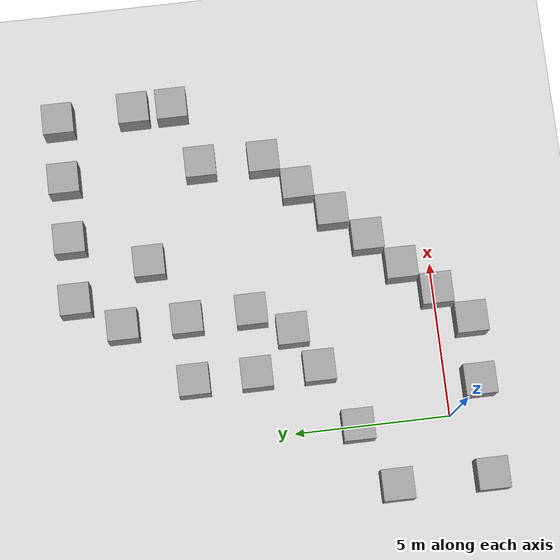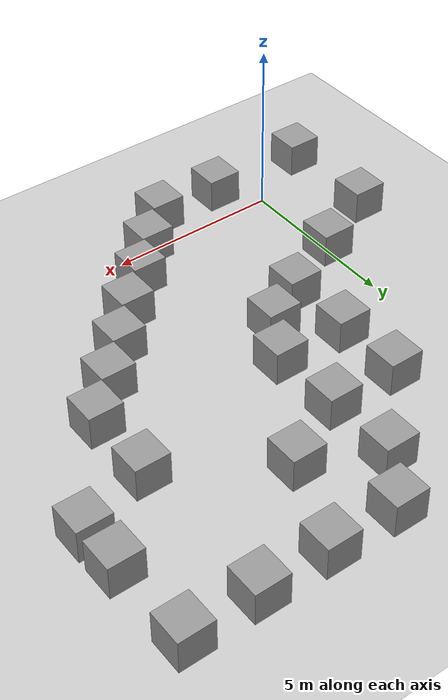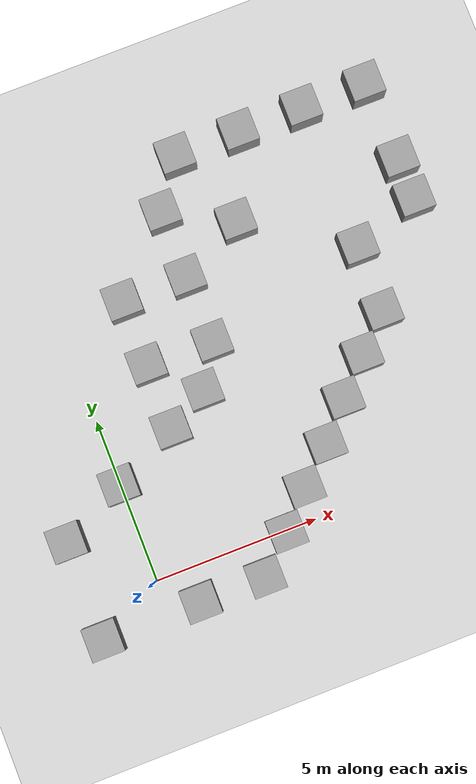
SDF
<sdf version="1.6">
 <world name="default">
  <scene><ambient>0.4 0.4 0.4 1</ambient><background>0.7 0.7 0.7 1</background><shadows>0</shadows></scene>
  <light name="sun" type="directional">
   <cast_shadows>0</cast_shadows>
   <pose>0 0 10 0 -0 0</pose>
   <diffuse>0.8 0.8 0.8 1</diffuse>
   <specular>0.2 0.2 0.2 1</specular>
   <attenuation>
    <range>1000</range>
    <constant>0.9</constant>
    <linear>0.01</linear>
    <quadratic>0.001</quadratic>
   </attenuation>
   <direction>-0.5 0.1 -0.9</direction>
  </light>
  <model name="ground_plane">
   <static>1</static>
   <link name="link">
    <collision name="collision">
     <geometry><plane><normal>0 0 1</normal><size>100 100</size></plane></geometry>
     <surface><friction><ode><mu>100</mu><mu2>50</mu2></ode></friction></surface>
    </collision>
    <visual name="visual">
     <cast_shadows>0</cast_shadows>
     <geometry><plane><normal>0 0 1</normal><size>100 100</size></plane></geometry>
     <material>
      <script><uri>file://media/materials/scripts/gazebo.material</uri><name>Gazebo/Grey</name></script>
     </material>
    </visual>
   </link>
  </model>
  <physics name="default_physics" default="0" type="ode">
   <real_time_update_rate>1000</real_time_update_rate>
   <max_step_size>0.001</max_step_size>
   <real_time_factor>1</real_time_factor>
   <ode>
    <solver>
     <type>quick</type>
     <iters>150</iters>
     <precon_iters>0</precon_iters>
     <sor>1.4</sor>
     <use_dynamic_moi_rescaling>1</use_dynamic_moi_rescaling>
    </solver>
    <constraints>
     <cfm>1e-05</cfm>
     <erp>0.2</erp>
     <contact_max_correcting_vel>2000</contact_max_correcting_vel>
     <contact_surface_layer>0.01</contact_surface_layer>
    </constraints>
   </ode>
  </physics>
  <gravity>0 0 -9.8</gravity>
  <magnetic_field>6e-06 2.3e-05 -4.2e-05</magnetic_field>
  <atmosphere type="adiabatic"/>
  <spherical_coordinates>
   <surface_model>EARTH_WGS84</surface_model>
   <latitude_deg>0</latitude_deg>
   <longitude_deg>0</longitude_deg>
   <elevation>0</elevation>
   <heading_deg>0</heading_deg>
  </spherical_coordinates>
  <model name="unit_box">
   <pose>-2 -1 0.5 0 -0 0</pose>
   <link name="link">
    <inertial>
     <mass>1</mass>
     <inertia>
      <ixx>0.166667</ixx>
      <ixy>0</ixy>
      <ixz>0</ixz>
      <iyy>0.166667</iyy>
      <iyz>0</iyz>
      <izz>0.166667</izz>
     </inertia>
    </inertial>
    <collision name="collision"><geometry><box><size>1 1 1</size></box></geometry></collision>
    <visual name="visual">
     <geometry><box><size>1 1 1</size></box></geometry>
     <material>
      <script><name>Gazebo/Grey</name><uri>file://media/materials/scripts/gazebo.material</uri></script>
     </material>
    </visual>
   </link>
  </model>
  <model name="unit_box_0">
   <pose>1 -1 0.5 0 -0 0</pose>
   <link name="link">
    <inertial>
     <mass>1</mass>
     <inertia>
      <ixx>0.166667</ixx>
      <ixy>0</ixy>
      <ixz>0</ixz>
      <iyy>0.166667</iyy>
      <iyz>0</iyz>
      <izz>0.166667</izz>
     </inertia>
    </inertial>
    <collision name="collision"><geometry><box><size>1 1 1</size></box></geometry></collision>
    <visual name="visual">
     <geometry><box><size>1 1 1</size></box></geometry>
     <material>
      <script><name>Gazebo/Grey</name><uri>file://media/materials/scripts/gazebo.material</uri></script>
     </material>
    </visual>
   </link>
  </model>
  <model name="unit_box_1">
   <pose>3 -1 0.5 0 -0 0</pose>
   <link name="link">
    <inertial>
     <mass>1</mass>
     <inertia>
      <ixx>0.166667</ixx>
      <ixy>0</ixy>
      <ixz>0</ixz>
      <iyy>0.166667</iyy>
      <iyz>0</iyz>
      <izz>0.166667</izz>
     </inertia>
    </inertial>
    <collision name="collision"><geometry><box><size>1 1 1</size></box></geometry></collision>
    <visual name="visual">
     <geometry><box><size>1 1 1</size></box></geometry>
     <material>
      <script><name>Gazebo/Grey</name><uri>file://media/materials/scripts/gazebo.material</uri></script>
     </material>
    </visual>
   </link>
  </model>
  <model name="unit_box_2">
   <pose>5 1 0.5 0 -0 0</pose>
   <link name="link">
    <inertial>
     <mass>1</mass>
     <inertia>
      <ixx>0.166667</ixx>
      <ixy>0</ixy>
      <ixz>0</ixz>
      <iyy>0.166667</iyy>
      <iyz>0</iyz>
      <izz>0.166667</izz>
     </inertia>
    </inertial>
    <collision name="collision"><geometry><box><size>1 1 1</size></box></geometry></collision>
    <visual name="visual">
     <geometry><box><size>1 1 1</size></box></geometry>
     <material>
      <script><name>Gazebo/Grey</name><uri>file://media/materials/scripts/gazebo.material</uri></script>
     </material>
    </visual>
   </link>
  </model>
  <model name="unit_box_3">
   <pose>7 3 0.5 0 -0 0</pose>
   <link name="link">
    <inertial>
     <mass>1</mass>
     <inertia>
      <ixx>0.166667</ixx>
      <ixy>0</ixy>
      <ixz>0</ixz>
      <iyy>0.166667</iyy>
      <iyz>0</iyz>
      <izz>0.166667</izz>
     </inertia>
    </inertial>
    <collision name="collision"><geometry><box><size>1 1 1</size></box></geometry></collision>
    <visual name="visual">
     <geometry><box><size>1 1 1</size></box></geometry>
     <material>
      <script><name>Gazebo/Grey</name><uri>file://media/materials/scripts/gazebo.material</uri></script>
     </material>
    </visual>
   </link>
  </model>
  <model name="unit_box_4">
   <pose>9 5 0.5 0 -0 0</pose>
   <link name="link">
    <inertial>
     <mass>1</mass>
     <inertia>
      <ixx>0.166667</ixx>
      <ixy>0</ixy>
      <ixz>0</ixz>
      <iyy>0.166667</iyy>
      <iyz>0</iyz>
      <izz>0.166667</izz>
     </inertia>
    </inertial>
    <collision name="collision"><geometry><box><size>1 1 1</size></box></geometry></collision>
    <visual name="visual">
     <geometry><box><size>1 1 1</size></box></geometry>
     <material>
      <script><name>Gazebo/Grey</name><uri>file://media/materials/scripts/gazebo.material</uri></script>
     </material>
    </visual>
   </link>
  </model>
  <model name="unit_box_5">
   <pose>-2 2 0.5 0 -0 0</pose>
   <link name="link">
    <inertial>
     <mass>1</mass>
     <inertia>
      <ixx>0.166667</ixx>
      <ixy>0</ixy>
      <ixz>0</ixz>
      <iyy>0.166667</iyy>
      <iyz>0</iyz>
      <izz>0.166667</izz>
     </inertia>
    </inertial>
    <collision name="collision"><geometry><box><size>1 1 1</size></box></geometry></collision>
    <visual name="visual">
     <geometry><box><size>1 1 1</size></box></geometry>
     <material>
      <script><name>Gazebo/Grey</name><uri>file://media/materials/scripts/gazebo.material</uri></script>
     </material>
    </visual>
   </link>
  </model>
  <model name="unit_box_6">
   <pose>0 3 0.5 0 -0 0</pose>
   <link name="link">
    <inertial>
     <mass>1</mass>
     <inertia>
      <ixx>0.166667</ixx>
      <ixy>0</ixy>
      <ixz>0</ixz>
      <iyy>0.166667</iyy>
      <iyz>0</iyz>
      <izz>0.166667</izz>
     </inertia>
    </inertial>
    <collision name="collision"><geometry><box><size>1 1 1</size></box></geometry></collision>
    <visual name="visual">
     <geometry><box><size>1 1 1</size></box></geometry>
     <material>
      <script><name>Gazebo/Grey</name><uri>file://media/materials/scripts/gazebo.material</uri></script>
     </material>
    </visual>
   </link>
  </model>
  <model name="unit_box_7">
   <pose>2 4 0.5 0 -0 0</pose>
   <link name="link">
    <inertial>
     <mass>1</mass>
     <inertia>
      <ixx>0.166667</ixx>
      <ixy>0</ixy>
      <ixz>0</ixz>
      <iyy>0.166667</iyy>
      <iyz>0</iyz>
      <izz>0.166667</izz>
     </inertia>
    </inertial>
    <collision name="collision"><geometry><box><size>1 1 1</size></box></geometry></collision>
    <visual name="visual">
     <geometry><box><size>1 1 1</size></box></geometry>
     <material>
      <script><name>Gazebo/Grey</name><uri>file://media/materials/scripts/gazebo.material</uri></script>
     </material>
    </visual>
   </link>
  </model>
  <model name="unit_box_8">
   <pose>2 6 0.5 0 -0 0</pose>
   <link name="link">
    <inertial>
     <mass>1</mass>
     <inertia>
      <ixx>0.166667</ixx>
      <ixy>0</ixy>
      <ixz>0</ixz>
      <iyy>0.166667</iyy>
      <iyz>0</iyz>
      <izz>0.166667</izz>
     </inertia>
    </inertial>
    <collision name="collision"><geometry><box><size>1 1 1</size></box></geometry></collision>
    <visual name="visual">
     <geometry><box><size>1 1 1</size></box></geometry>
     <material>
      <script><name>Gazebo/Grey</name><uri>file://media/materials/scripts/gazebo.material</uri></script>
     </material>
    </visual>
   </link>
  </model>
  <model name="unit_box_9">
   <pose>2 8 0.5 0 -0 0</pose>
   <link name="link">
    <inertial>
     <mass>1</mass>
     <inertia>
      <ixx>0.166667</ixx>
      <ixy>0</ixy>
      <ixz>0</ixz>
      <iyy>0.166667</iyy>
      <iyz>0</iyz>
      <izz>0.166667</izz>
     </inertia>
    </inertial>
    <collision name="collision"><geometry><box><size>1 1 1</size></box></geometry></collision>
    <visual name="visual">
     <geometry><box><size>1 1 1</size></box></geometry>
     <material>
      <script><name>Gazebo/Grey</name><uri>file://media/materials/scripts/gazebo.material</uri></script>
     </material>
    </visual>
   </link>
  </model>
  <model name="unit_box_10">
   <pose>5 11.5 0.5 0 -0 0</pose>
   <link name="link">
    <inertial>
     <mass>1</mass>
     <inertia>
      <ixx>0.166667</ixx>
      <ixy>0</ixy>
      <ixz>0</ixz>
      <iyy>0.166667</iyy>
      <iyz>0</iyz>
      <izz>0.166667</izz>
     </inertia>
    </inertial>
    <collision name="collision"><geometry><box><size>1 1 1</size></box></geometry></collision>
    <visual name="visual">
     <geometry><box><size>1 1 1</size></box></geometry>
     <material>
      <script><name>Gazebo/Grey</name><uri>file://media/materials/scripts/gazebo.material</uri></script>
     </material>
    </visual>
   </link>
  </model>
  <model name="unit_box_11">
   <pose>7 11.5 0.5 0 -0 0</pose>
   <link name="link">
    <inertial>
     <mass>1</mass>
     <inertia>
      <ixx>0.166667</ixx>
      <ixy>0</ixy>
      <ixz>0</ixz>
      <iyy>0.166667</iyy>
      <iyz>0</iyz>
      <izz>0.166667</izz>
     </inertia>
    </inertial>
    <collision name="collision"><geometry><box><size>1 1 1</size></box></geometry></collision>
    <visual name="visual">
     <geometry><box><size>1 1 1</size></box></geometry>
     <material>
      <script><name>Gazebo/Grey</name><uri>file://media/materials/scripts/gazebo.material</uri></script>
     </material>
    </visual>
   </link>
  </model>
  <model name="unit_box_12">
   <pose>9 11.5 0.5 0 -0 0</pose>
   <link name="link">
    <inertial>
     <mass>1</mass>
     <inertia>
      <ixx>0.166667</ixx>
      <ixy>0</ixy>
      <ixz>0</ixz>
      <iyy>0.166667</iyy>
      <iyz>0</iyz>
      <izz>0.166667</izz>
     </inertia>
    </inertial>
    <collision name="collision"><geometry><box><size>1 1 1</size></box></geometry></collision>
    <visual name="visual">
     <geometry><box><size>1 1 1</size></box></geometry>
     <material>
      <script><name>Gazebo/Grey</name><uri>file://media/materials/scripts/gazebo.material</uri></script>
     </material>
    </visual>
   </link>
  </model>
  <model name="unit_box_13">
   <pose>11 11.5 0.5 0 -0 0</pose>
   <link name="link">
    <inertial>
     <mass>1</mass>
     <inertia>
      <ixx>0.166667</ixx>
      <ixy>0</ixy>
      <ixz>0</ixz>
      <iyy>0.166667</iyy>
      <iyz>0</iyz>
      <izz>0.166667</izz>
     </inertia>
    </inertial>
    <collision name="collision"><geometry><box><size>1 1 1</size></box></geometry></collision>
    <visual name="visual">
     <geometry><box><size>1 1 1</size></box></geometry>
     <material>
      <script><name>Gazebo/Grey</name><uri>file://media/materials/scripts/gazebo.material</uri></script>
     </material>
    </visual>
   </link>
  </model>
  <model name="unit_box_14">
   <pose>4.03319 5.94636 0.5 0 -0 0</pose>
   <link name="link">
    <inertial>
     <mass>1</mass>
     <inertia>
      <ixx>0.166667</ixx>
      <ixy>0</ixy>
      <ixz>0</ixz>
      <iyy>0.166667</iyy>
      <iyz>0</iyz>
      <izz>0.166667</izz>
     </inertia>
    </inertial>
    <collision name="collision"><geometry><box><size>1 1 1</size></box></geometry></collision>
    <visual name="visual">
     <geometry><box><size>1 1 1</size></box></geometry>
     <material>
      <script><name>Gazebo/Grey</name><uri>file://media/materials/scripts/gazebo.material</uri></script>
     </material>
    </visual>
   </link>
  </model>
  <model name="unit_box_15">
   <pose>3.99665 8.0147 0.5 0 -0 0</pose>
   <link name="link">
    <inertial>
     <mass>1</mass>
     <inertia>
      <ixx>0.166667</ixx>
      <ixy>0</ixy>
      <ixz>0</ixz>
      <iyy>0.166667</iyy>
      <iyz>0</iyz>
      <izz>0.166667</izz>
     </inertia>
    </inertial>
    <collision name="collision"><geometry><box><size>1 1 1</size></box></geometry></collision>
    <visual name="visual">
     <geometry><box><size>1 1 1</size></box></geometry>
     <material>
      <script><name>Gazebo/Grey</name><uri>file://media/materials/scripts/gazebo.material</uri></script>
     </material>
    </visual>
   </link>
  </model>
  <model name="unit_box_16">
   <pose>4.00744 10.0731 0.5 0 -0 0</pose>
   <link name="link">
    <inertial>
     <mass>1</mass>
     <inertia>
      <ixx>0.166667</ixx>
      <ixy>0</ixy>
      <ixz>0</ixz>
      <iyy>0.166667</iyy>
      <iyz>0</iyz>
      <izz>0.166667</izz>
     </inertia>
    </inertial>
    <collision name="collision"><geometry><box><size>1 1 1</size></box></geometry></collision>
    <visual name="visual">
     <geometry><box><size>1 1 1</size></box></geometry>
     <material>
      <script><name>Gazebo/Grey</name><uri>file://media/materials/scripts/gazebo.material</uri></script>
     </material>
    </visual>
   </link>
  </model>
  <model name="unit_box_17">
   <pose>5.97383 9.02776 0.5 0 -0 0</pose>
   <link name="link">
    <inertial>
     <mass>1</mass>
     <inertia>
      <ixx>0.166667</ixx>
      <ixy>0</ixy>
      <ixz>0</ixz>
      <iyy>0.166667</iyy>
      <iyz>0</iyz>
      <izz>0.166667</izz>
     </inertia>
    </inertial>
    <collision name="collision"><geometry><box><size>1 1 1</size></box></geometry></collision>
    <visual name="visual">
     <geometry><box><size>1 1 1</size></box></geometry>
     <material>
      <script><name>Gazebo/Grey</name><uri>file://media/materials/scripts/gazebo.material</uri></script>
     </material>
    </visual>
   </link>
  </model>
  <model name="unit_box_18">
   <pose>9.05065 7.05155 0.5 0 -0 0</pose>
   <link name="link">
    <inertial>
     <mass>1</mass>
     <inertia>
      <ixx>0.166667</ixx>
      <ixy>0</ixy>
      <ixz>0</ixz>
      <iyy>0.166667</iyy>
      <iyz>0</iyz>
      <izz>0.166667</izz>
     </inertia>
    </inertial>
    <collision name="collision"><geometry><box><size>1 1 1</size></box></geometry></collision>
    <visual name="visual">
     <geometry><box><size>1 1 1</size></box></geometry>
     <material>
      <script><name>Gazebo/Grey</name><uri>file://media/materials/scripts/gazebo.material</uri></script>
     </material>
    </visual>
   </link>
  </model>
  <model name="unit_box_19">
   <pose>11.0985 9.03439 0.5 0 -0 0</pose>
   <link name="link">
    <inertial>
     <mass>1</mass>
     <inertia>
      <ixx>0.166667</ixx>
      <ixy>0</ixy>
      <ixz>0</ixz>
      <iyy>0.166667</iyy>
      <iyz>0</iyz>
      <izz>0.166667</izz>
     </inertia>
    </inertial>
    <collision name="collision"><geometry><box><size>1 1 1</size></box></geometry></collision>
    <visual name="visual">
     <geometry><box><size>1 1 1</size></box></geometry>
     <material>
      <script><name>Gazebo/Grey</name><uri>file://media/materials/scripts/gazebo.material</uri></script>
     </material>
    </visual>
   </link>
  </model>
  <model name="unit_box_20">
   <pose>11.1031 7.77801 0.5 0 -0 0</pose>
   <link name="link">
    <inertial>
     <mass>1</mass>
     <inertia>
      <ixx>0.166667</ixx>
      <ixy>0</ixy>
      <ixz>0</ixz>
      <iyy>0.166667</iyy>
      <iyz>0</iyz>
      <izz>0.166667</izz>
     </inertia>
    </inertial>
    <collision name="collision"><geometry><box><size>1 1 1</size></box></geometry></collision>
    <visual name="visual">
     <geometry><box><size>1 1 1</size></box></geometry>
     <material>
      <script><name>Gazebo/Grey</name><uri>file://media/materials/scripts/gazebo.material</uri></script>
     </material>
    </visual>
   </link>
  </model>
  <model name="unit_box_21">
   <pose>6.04293 1.96639 0.5 0 -0 0</pose>
   <link name="link">
    <inertial>
     <mass>1</mass>
     <inertia>
      <ixx>0.166667</ixx>
      <ixy>0</ixy>
      <ixz>0</ixz>
      <iyy>0.166667</iyy>
      <iyz>0</iyz>
      <izz>0.166667</izz>
     </inertia>
    </inertial>
    <collision name="collision"><geometry><box><size>1 1 1</size></box></geometry></collision>
    <visual name="visual">
     <geometry><box><size>1 1 1</size></box></geometry>
     <material>
      <script><name>Gazebo/Grey</name><uri>file://media/materials/scripts/gazebo.material</uri></script>
     </material>
    </visual>
   </link>
  </model>
  <model name="unit_box_22">
   <pose>7.98951 4.01162 0.5 0 -0 0</pose>
   <link name="link">
    <inertial>
     <mass>1</mass>
     <inertia>
      <ixx>0.166667</ixx>
      <ixy>0</ixy>
      <ixz>0</ixz>
      <iyy>0.166667</iyy>
      <iyz>0</iyz>
      <izz>0.166667</izz>
     </inertia>
    </inertial>
    <collision name="collision"><geometry><box><size>1 1 1</size></box></geometry></collision>
    <visual name="visual">
     <geometry><box><size>1 1 1</size></box></geometry>
     <material>
      <script><name>Gazebo/Grey</name><uri>file://media/materials/scripts/gazebo.material</uri></script>
     </material>
    </visual>
   </link>
  </model>
  <model name="unit_box_23">
   <pose>4.04713 -0.019822 0.5 0 -0 0</pose>
   <link name="link">
    <inertial>
     <mass>1</mass>
     <inertia>
      <ixx>0.166667</ixx>
      <ixy>0</ixy>
      <ixz>0</ixz>
      <iyy>0.166667</iyy>
      <iyz>0</iyz>
      <izz>0.166667</izz>
     </inertia>
    </inertial>
    <collision name="collision"><geometry><box><size>1 1 1</size></box></geometry></collision>
    <visual name="visual">
     <geometry><box><size>1 1 1</size></box></geometry>
     <material>
      <script><name>Gazebo/Grey</name><uri>file://media/materials/scripts/gazebo.material</uri></script>
     </material>
    </visual>
   </link>
  </model>
  <model name="unit_box_24">
   <pose>3.2705 4.70601 0.5 0 -0 0</pose>
   <link name="link">
    <inertial>
     <mass>1</mass>
     <inertia>
      <ixx>0.166667</ixx>
      <ixy>0</ixy>
      <ixz>0</ixz>
      <iyy>0.166667</iyy>
      <iyz>0</iyz>
      <izz>0.166667</izz>
     </inertia>
    </inertial>
    <collision name="collision"><geometry><box><size>1 1 1</size></box></geometry></collision>
    <visual name="visual">
     <geometry><box><size>1 1 1</size></box></geometry>
     <material>
      <script><name>Gazebo/Grey</name><uri>file://media/materials/scripts/gazebo.material</uri></script>
     </material>
    </visual>
   </link>
  </model>
 </world>
</sdf>
